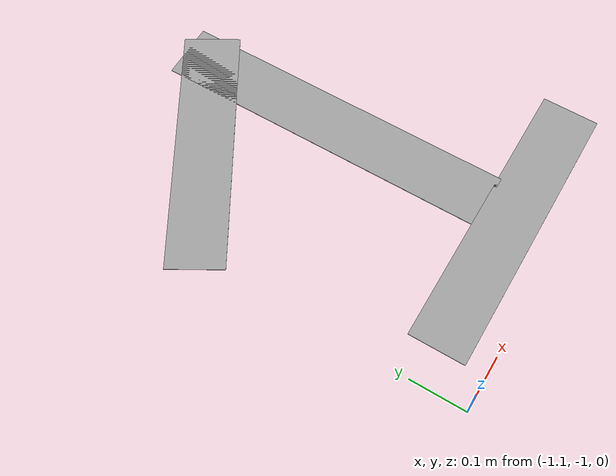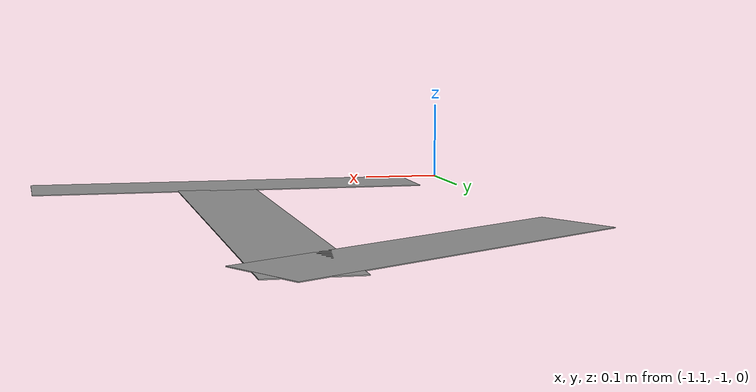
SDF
<?xml version='1.0'?>
<sdf version='1.7'>
  <model name='One'>
    <pose>-0.571202 -0.482216 0 0 -0 0</pose>
    <link name='Wall_14'>
      <collision name='Wall_14_Collision'>
        <geometry>
          <box>
            <size>0.450135 0.1 0.001</size>
          </box>
        </geometry>
        <pose>0 0 0.005 0 -0 0</pose>
      </collision>
      <visual name='Wall_14_Visual'>
        <pose>0 0 0.005 0 -0 0</pose>
        <geometry>
          <box>
            <size>0.450135 0.1 0.001</size>
          </box>
        </geometry>
        <material>
          <script>
            <uri>file://media/materials/scripts/gazebo.material</uri>
            <name>Gazebo/Grey</name>
          </script>
          <ambient>1 1 1 1</ambient>
        </material>
        <meta>
          <layer>0</layer>
        </meta>
      </visual>
      <pose>-0.351298 0.074716 0 0 -0 0.523754</pose>
    </link>
    <link name='Wall_15'>
      <collision name='Wall_15_Collision'>
        <geometry>
          <box>
            <size>0.6 0.1 0.001</size>
          </box>
        </geometry>
        <pose>0 0 0.005 0 -0 0</pose>
      </collision>
      <visual name='Wall_15_Visual'>
        <pose>0 0 0.005 0 -0 0</pose>
        <geometry>
          <box>
            <size>0.6 0.1 0.001</size>
          </box>
        </geometry>
        <material>
          <script>
            <uri>file://media/materials/scripts/gazebo.material</uri>
            <name>Gazebo/Grey</name>
          </script>
          <ambient>1 0.996078 0.996078 1</ambient>
        </material>
        <meta>
          <layer>0</layer>
        </meta>
      </visual>
      <pose>-0.199798 -0.087784 0 0 -0 -1.5708</pose>
    </link>
    <link name='Wall_18'>
      <collision name='Wall_18_Collision'>
        <geometry>
          <box>
            <size>0.5 0.1 0.001</size>
          </box>
        </geometry>
        <pose>0 0 0.005 0 -0 0</pose>
      </collision>
      <visual name='Wall_18_Visual'>
        <pose>0 0 0.005 0 -0 0</pose>
        <geometry>
          <box>
            <size>0.5 0.1 0.001</size>
          </box>
        </geometry>
        <material>
          <script>
            <uri>file://media/materials/scripts/gazebo.material</uri>
            <name>Gazebo/Grey</name>
          </script>
          <ambient>1 0.996078 0.996078 1</ambient>
        </material>
        <meta>
          <layer>0</layer>
        </meta>
      </visual>
      <pose>-0.217704 -0.432216 0 0 -0 0</pose>
    </link>
    <static>1</static>
  </model>
</sdf>
